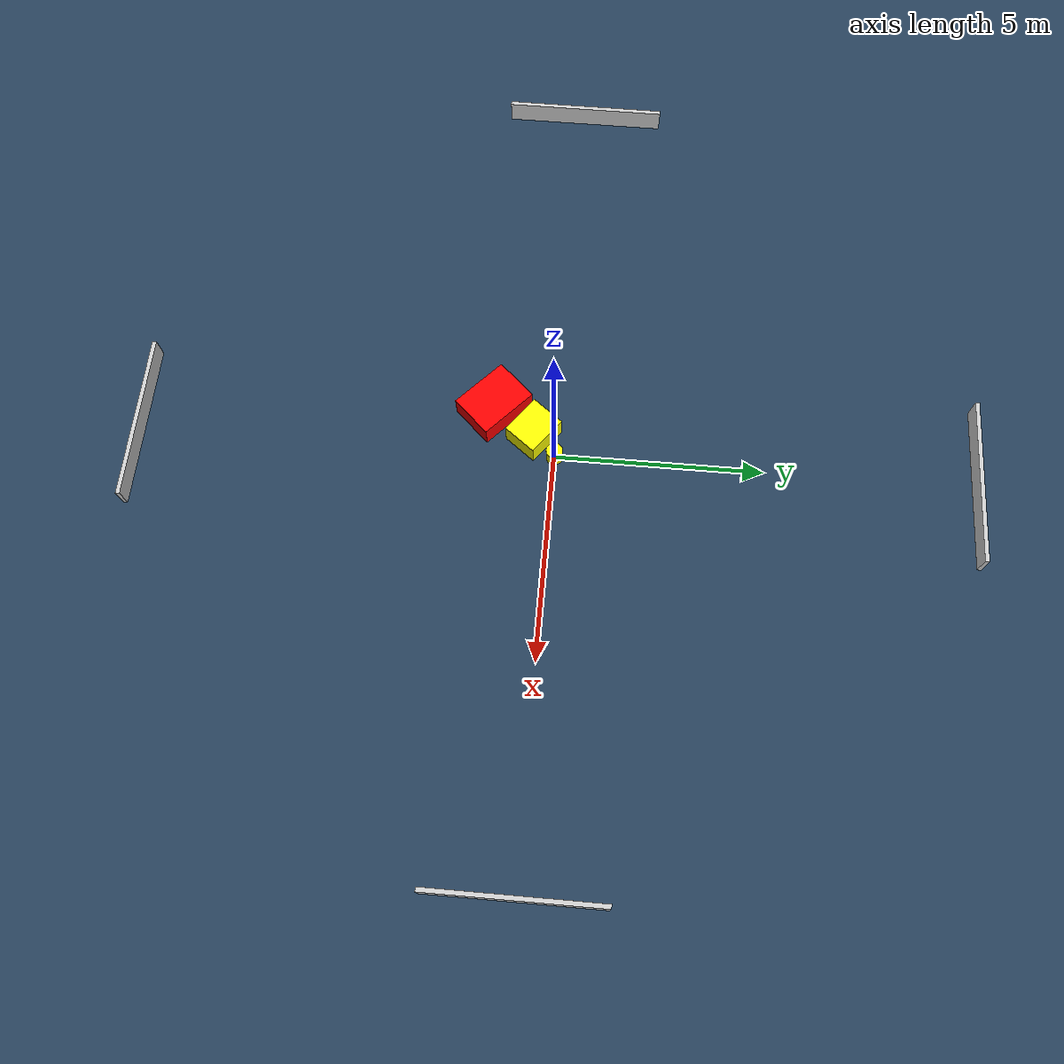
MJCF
<?xml version="1.0" ?>
<mujoco model="generated_environment">
  <option timestep="0.01" integrator="RK4" cone="elliptic"/>
  <default>
    <geom density="1"/>
  </default>
  <asset>
    <texture builtin="gradient" height="3072" name="skybox" rgb1="0.3 0.5 0.7" rgb2="0 0 0" type="skybox" width="512"/>
    <texture builtin="checker" height="300" name="groundplane" rgb1="0.2 0.3 0.4" rgb2="0.1 0.2 0.3" type="2d" width="300"/>
    <material name="groundplane" reflectance="0.2" texrepeat="5 5" texture="groundplane"/>
  </asset>
  <worldbody>
    <light dir="0 0 -1" directional="true" pos="0 0 1.5"/>
    <geom condim="3" friction="0.5 0.005 0.001" material="groundplane" name="floor" pos="0 0 0" size="0 0 0.05" type="plane"/>
    <body name="walls">
      <geom name="wall_1" condim="4" pos="-10.0 0.0 0.3" rgba="0.800000011920929 0.800000011920929 0.800000011920929 1.0" size="0.05 2.0 0.3" type="box"/>
      <geom name="wall_2" condim="4" pos="10.0 0.0 0.3" rgba="0.800000011920929 0.800000011920929 0.800000011920929 1.0" size="0.05 2.0 0.3" type="box"/>
      <geom name="wall_3" condim="4" pos="0.0 -10.0 0.3" rgba="0.800000011920929 0.800000011920929 0.800000011920929 1.0" size="2.0 0.05 0.3" type="box"/>
      <geom name="wall_4" condim="4" pos="0.0 10.0 0.3" rgba="0.800000011920929 0.800000011920929 0.800000011920929 1.0" size="2.0 0.05 0.3" type="box"/>
    </body>
    <body name="robot">
      <joint name="joint_x" type="slide" pos="0 0 0" axis="1 0 0"/>
      <joint name="joint_y" type="slide" pos="0 0 0" axis="0 1 0"/>
      <geom name="robot" type="cylinder" pos="0.0 0.0 0.2" size="0.2 0.2 0.0" mass="5.0" friction="1.0 0.005 0.0001" condim="4" rgba="1.0 1.0 0.0 1.0"/>
    </body>
    <body name="obstacle_1_movable">
      <geom name="obstacle_1_movable" condim="4" pos="-0.5399507316100252 -0.5402606990099503 0.3" euler="0 0 52.76495087379245" friction="0.0 0.005 0.001" rgba="1.0 1.0 0.0 1.0" size="0.4420303639809686 0.5115201684306497 0.3" type="box" mass="0.1"/>
      <joint type="free"/>
    </body>
    <body name="obstacle_2_static">
      <geom name="obstacle_2_static" condim="4" pos="-1.1727761469000457 -1.5569613352375817 0.3" euler="0 0 227.04007651311937" friction="0.0 0.005 0.001" rgba="1.0 0.0 0.0 1.0" size="0.5582400026562554 0.7352268804294559 0.3" type="box"/>
    </body>
  </worldbody>
  <actuator>
    <motor name="actuator_x" joint="joint_x" gear="1" ctrlrange="-1 1"/>
    <motor name="actuator_y" joint="joint_y" gear="1" ctrlrange="-1 1"/>
  </actuator>
</mujoco>
